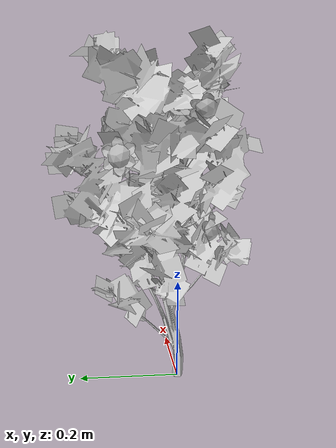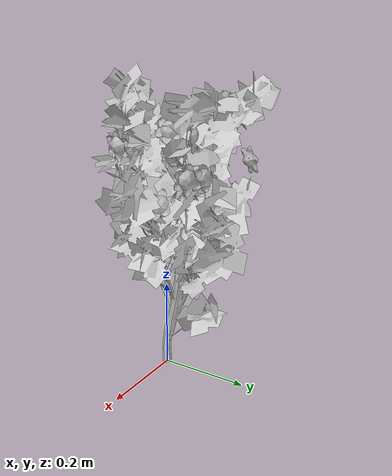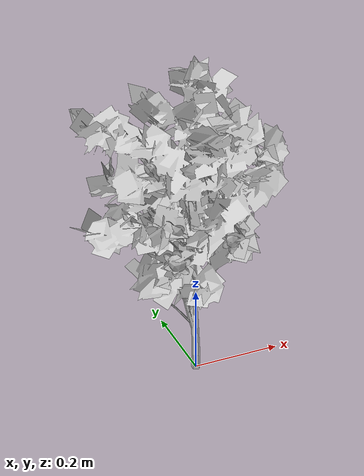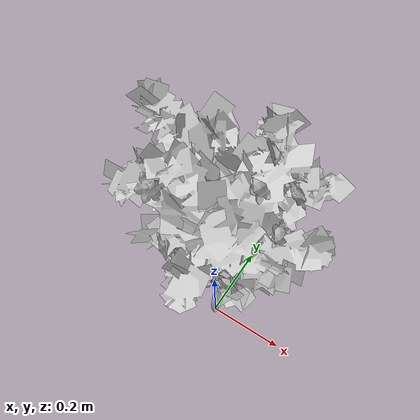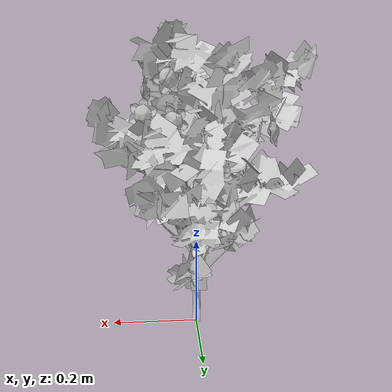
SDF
<?xml version="1.0" ?>
<sdf version="1.6">
  <model name="tree-flowers">
    <!--Skew-Seed:3545704200-->
    <static>true</static>
    <link name="link"/>
    <include>
      <uri>model://tree-mesh</uri>
      <pose>0 0 0 0 0 0</pose>
    </include>
    <joint name="tree_joint" type="fixed">
      <child>tree-mesh::link</child>
      <parent>link</parent>
    </joint>
    <include>
      <name>bramble_0</name>
      <uri>model://bramble</uri>
      <pose> -0.1435953690009923 0.12017887723922326 0.4742754085447405 -2.710892352547404 1.7591606733843062 0.0</pose>
    </include>
    <joint name="flower_joint_0" type="fixed">
      <child>bramble_0::flower_link</child>
      <parent>link</parent>
    </joint>
    <include>
      <name>bramble_1</name>
      <uri>model://bramble</uri>
      <pose> -0.06268091857282712 -0.048121617339919036 0.32299959716969134 -3.925546045857651 1.6731457948458122 0.0</pose>
    </include>
    <joint name="flower_joint_1" type="fixed">
      <child>bramble_1::flower_link</child>
      <parent>link</parent>
    </joint>
    <include>
      <name>bramble_2</name>
      <uri>model://bramble</uri>
      <pose> 0.06573291419319492 -0.03864840669353612 0.34764374118609864 1.2439192685456553 0.8647244857705098 0.0</pose>
    </include>
    <joint name="flower_joint_2" type="fixed">
      <child>bramble_2::flower_link</child>
      <parent>link</parent>
    </joint>
    <include>
      <name>bramble_3</name>
      <uri>model://bramble</uri>
      <pose> -0.11133764238632912 -0.034049790193158055 0.5588780370114022 -3.0626391388206735 0.9678618072747653 0.0</pose>
    </include>
    <joint name="flower_joint_3" type="fixed">
      <child>bramble_3::flower_link</child>
      <parent>link</parent>
    </joint>
    <include>
      <name>bramble_4</name>
      <uri>model://bramble</uri>
      <pose> 0.10463834059016047 -0.041186547782050414 0.5506120328927491 0.15595003905600113 1.626054821851867 0.0</pose>
    </include>
    <joint name="flower_joint_4" type="fixed">
      <child>bramble_4::flower_link</child>
      <parent>link</parent>
    </joint>
    <include>
      <name>bramble_5</name>
      <uri>model://bramble</uri>
      <pose> 0.114995812127892 0.0651177660333602 0.4403851041563775 -0.0905979861342665 0.9146367157030235 0.0</pose>
    </include>
    <joint name="flower_joint_5" type="fixed">
      <child>bramble_5::flower_link</child>
      <parent>link</parent>
    </joint>
    <include>
      <name>bramble_6</name>
      <uri>model://bramble</uri>
      <pose> 0.06080527822088291 0.05655916169735969 0.5860858407832701 -0.1524632921955852 0.8837186470064666 0.0</pose>
    </include>
    <joint name="flower_joint_6" type="fixed">
      <child>bramble_6::flower_link</child>
      <parent>link</parent>
    </joint>
    <include>
      <name>bramble_7</name>
      <uri>model://bramble</uri>
      <pose> 0.05134059805301311 0.12433016170847154 0.4970799340201575 -1.1009291285516474 1.8081200495980143 0.0</pose>
    </include>
    <joint name="flower_joint_7" type="fixed">
      <child>bramble_7::flower_link</child>
      <parent>link</parent>
    </joint>
    <include>
      <name>bramble_8</name>
      <uri>model://bramble</uri>
      <pose> 0.06391293612597054 0.10679182291905892 0.5819621921731633 -1.7259245308278839 2.1083283215982958 0.0</pose>
    </include>
    <joint name="flower_joint_8" type="fixed">
      <child>bramble_8::flower_link</child>
      <parent>link</parent>
    </joint>
    <include>
      <name>bramble_9</name>
      <uri>model://bramble</uri>
      <pose> -0.07114688462685503 -0.06155817018382784 0.41707167225741276 -3.7375761410729047 1.10554396055856 0.0</pose>
    </include>
    <joint name="flower_joint_9" type="fixed">
      <child>bramble_9::flower_link</child>
      <parent>link</parent>
    </joint>
    <include>
      <name>bramble_10</name>
      <uri>model://bramble</uri>
      <pose> 0.11244714347167509 0.1246845230551348 0.5092649256193593 -1.0614527658141255 1.3707255140697745 0.0</pose>
    </include>
    <joint name="flower_joint_10" type="fixed">
      <child>bramble_10::flower_link</child>
      <parent>link</parent>
    </joint>
  </model>
</sdf>

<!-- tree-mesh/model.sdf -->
<sdf version="1.6">
  <model name="tree-mesh">
    <static>true</static>
    <link name="link">

      <collision name="collision">
        <geometry>
          <mesh>
            <uri>model://tree-mesh/meshes/new_tree.dae</uri>
            <scale>0.0625 0.0625 0.0625</scale>
          </mesh>
        </geometry>
      </collision>

      <!-- simplified collision for sake of speed since leaves shouldn't be blocking anyway -->

      <visual name="leaves">
        <geometry>
          <mesh>
            <uri>model://tree-mesh/meshes/leaves.dae</uri>
            <scale>0.0325 0.0325 0.0325</scale>
          </mesh>
        </geometry>
        <material>
          <script>
            <uri>model://tree-mesh/materials/scripts/</uri>
            <uri>model://tree-mesh/materials/textures/</uri>
            <name>NewTree/Branch</name>
          </script>
        </material>
      </visual>
      <visual name="bark">
        <geometry>
          <mesh>
            <uri>model://tree-mesh/meshes/bark.dae</uri>
            <scale>0.0325 0.0325 0.0325</scale>
          </mesh>
        </geometry>
        <material>
          <script>
            <uri>model://tree-mesh/materials/scripts/</uri>
            <uri>model://tree-mesh/materials/textures/</uri>
            <name>NewTree/Bark</name>
          </script>
        </material>
      </visual>
    </link>
  </model>
</sdf>

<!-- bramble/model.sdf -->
<sdf version="1.6">
  <model name="bramble-flower">
    <static>true</static>
    <link name="flower_link">
      <collision name="body_collision">
        <geometry>
          <mesh>
            <uri>model://bramble/meshes/bramble.dae</uri>
            <scale>0.4 0.4 0.4</scale>
          </mesh>
        </geometry>
      </collision>
      <visual name="petals">
        <geometry>
          <mesh>
            <uri>model://bramble/meshes/bramble.dae</uri>
            <scale>0.4 0.4 0.4</scale>
            <submesh>
              <name>petal</name>
            </submesh>
          </mesh>
        </geometry>
        <material>
          <script>
            <uri>model://bramble/materials/scripts/</uri>
            <uri>model://bramble/materials/textures/</uri>
            <name>Bramble/Petal</name>
          </script>
        </material>
      </visual>
      <visual name="carpel">
        <geometry>
          <mesh>
            <uri>model://bramble/meshes/bramble.dae</uri>
            <scale>0.4 0.4 0.4</scale>
            <submesh>
              <name>carpel</name>
            </submesh>
          </mesh>
        </geometry>
        <material>
          <script>
            <uri>model://bramble/materials/scripts/</uri>
            <uri>model://bramble/materials/textures/</uri>
            <name>Bramble/Carpel</name>
          </script>
        </material>
      </visual>
      <visual name="stamen">
        <geometry>
          <mesh>
            <uri>model://bramble/meshes/bramble.dae</uri>
            <scale>0.4 0.4 0.4</scale>
            <submesh>
              <name>stamen</name>
            </submesh>
          </mesh>
        </geometry>
        <material>
          <script>
            <uri>model://bramble/materials/scripts/</uri>
            <uri>model://bramble/materials/textures/</uri>
            <name>Bramble/Stamen</name>
          </script>
        </material>
      </visual>
    </link>
  </model>
</sdf>
